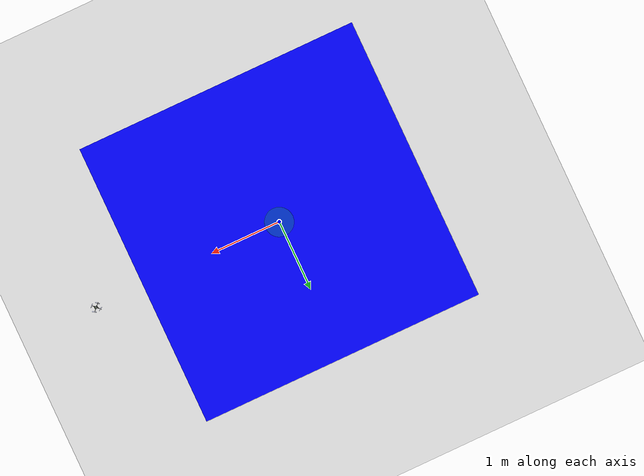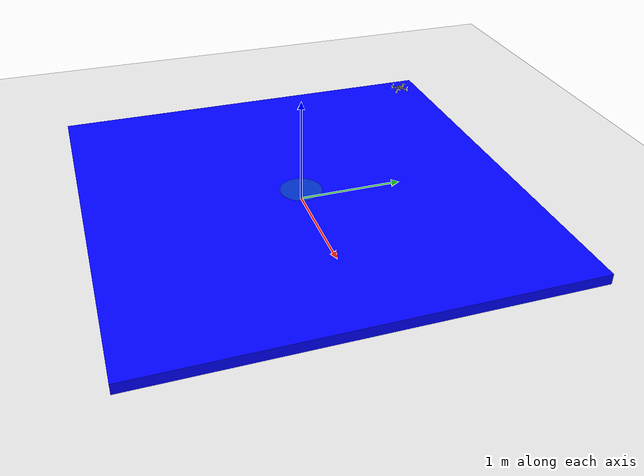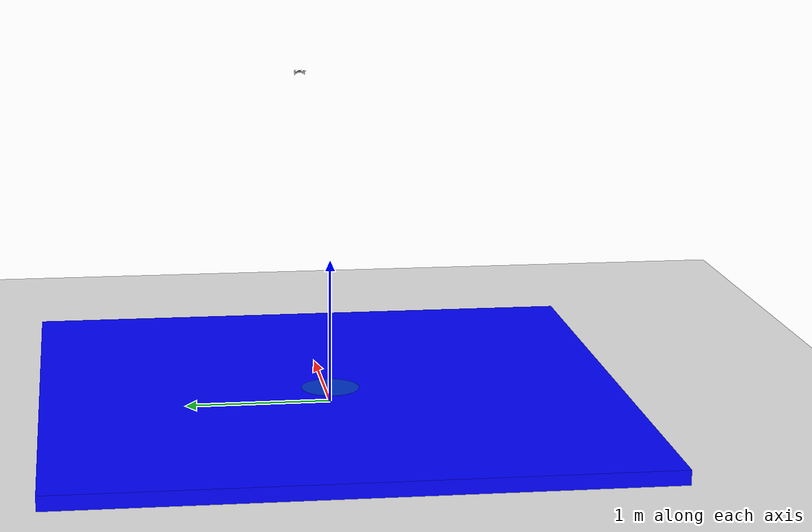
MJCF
<mujoco model="drone_landing">
    <option timestep="0.001"/>
    <option integrator="RK4" density="1.225" viscosity="1.8e-5"/>
    <compiler inertiafromgeom="false"
              meshdir="/Users/hadarhalfon/PycharmProjects/pythonProject1/assets/cf2"
              autolimits="true"/>
    <visual>
        <!-- טווח הערפל (מוגדר ב-map) -->
        <map fogstart="1" fogend="5"/>
        <!-- צבע/שקיפות הערפל (מוגדר ב-rgba.fog) -->
        <rgba fog="0.9 0.9 0.9 0.0"/>
    </visual>

    <!-- Softer, more damped contacts + higher sliding friction -->
    <default>
        <default class="cf2">
            <default class="visual">
                <geom group="2" type="mesh" contype="0" conaffinity="0"/>
            </default>
            <default class="collision">
                <geom group="3" type="mesh"
                      solref="0.02 1.0"
                      solimp="0.90 0.95 0.001"
                      friction="1.2 0.8 0.001"
                      condim="6"/>
            </default>
            <site group="5"/>
        </default>
    </default>

    <asset>
        <material name="polished_plastic" rgba="0.631 0.659 0.678 1"/>
        <material name="polished_gold" rgba="0.969 0.878 0.6 1"/>
        <material name="medium_gloss_plastic" rgba="0.109 0.184 0.0 1"/>
        <material name="propeller_plastic" rgba="0.792 0.820 0.933 1"/>
        <material name="white" rgba="1 1 1 1"/>
        <material name="body_frame_plastic" rgba="0.102 0.102 0.102 1"/>
        <material name="burnished_chrome" rgba="0.898 0.898 0.898 1"/>

        <!-- meshes -->
        <mesh file="cf2_0.obj"/>
        <mesh file="cf2_1.obj"/>
        <mesh file="cf2_2.obj"/>
        <mesh file="cf2_3.obj"/>
        <mesh file="cf2_4.obj"/>
        <mesh file="cf2_5.obj"/>
        <mesh file="cf2_6.obj"/>
        <mesh file="cf2_collision_0.obj"/>
        <mesh file="cf2_collision_1.obj"/>
        <mesh file="cf2_collision_2.obj"/>
        <mesh file="cf2_collision_3.obj"/>
        <mesh file="cf2_collision_4.obj"/>
        <mesh file="cf2_collision_5.obj"/>
        <mesh file="cf2_collision_6.obj"/>
        <mesh file="cf2_collision_7.obj"/>
        <mesh file="cf2_collision_8.obj"/>
        <mesh file="cf2_collision_9.obj"/>
        <mesh file="cf2_collision_10.obj"/>
        <mesh file="cf2_collision_11.obj"/>
        <mesh file="cf2_collision_12.obj"/>
        <mesh file="cf2_collision_13.obj"/>
        <mesh file="cf2_collision_14.obj"/>
        <mesh file="cf2_collision_15.obj"/>
        <mesh file="cf2_collision_16.obj"/>
        <mesh file="cf2_collision_17.obj"/>
        <mesh file="cf2_collision_18.obj"/>
        <mesh file="cf2_collision_19.obj"/>
        <mesh file="cf2_collision_20.obj"/>
        <mesh file="cf2_collision_21.obj"/>
        <mesh file="cf2_collision_22.obj"/>
        <mesh file="cf2_collision_23.obj"/>
        <mesh file="cf2_collision_24.obj"/>
        <mesh file="cf2_collision_25.obj"/>
        <mesh file="cf2_collision_26.obj"/>
        <mesh file="cf2_collision_27.obj"/>
        <mesh file="cf2_collision_28.obj"/>
        <mesh file="cf2_collision_29.obj"/>
        <mesh file="cf2_collision_30.obj"/>
        <mesh file="cf2_collision_31.obj"/>
    </asset>

    <worldbody>
        <!-- Drone -->
        <body name="cf2" pos="2 0 2" childclass="cf2">
            <joint type="free" damping="0.05"/>
            <inertial pos="0 0 0" mass="0.027" diaginertia="2.3951e-5 2.3951e-5 3.2347e-5"/>
            <camera name="track" pos="-1 0 .5" xyaxes="0 -1 0 1 0 2" mode="trackcom"/>

            <!-- visual geoms -->
            <geom mesh="cf2_0" material="propeller_plastic" class="visual"/>
            <geom mesh="cf2_1" material="medium_gloss_plastic" class="visual"/>
            <geom mesh="cf2_2" material="polished_gold" class="visual"/>
            <geom mesh="cf2_3" material="polished_plastic" class="visual"/>
            <geom mesh="cf2_4" material="burnished_chrome" class="visual"/>
            <geom mesh="cf2_5" material="body_frame_plastic" class="visual"/>
            <geom mesh="cf2_6" material="white" class="visual"/>

            <!-- collision geoms -->
            <geom mesh="cf2_collision_0" class="collision"/>
            <geom mesh="cf2_collision_1" class="collision"/>
            <geom mesh="cf2_collision_2" class="collision"/>
            <geom mesh="cf2_collision_3" class="collision"/>
            <geom mesh="cf2_collision_4" class="collision"/>
            <geom mesh="cf2_collision_5" class="collision"/>
            <geom mesh="cf2_collision_6" class="collision"/>
            <geom mesh="cf2_collision_7" class="collision"/>
            <geom mesh="cf2_collision_8" class="collision"/>
            <geom mesh="cf2_collision_9" class="collision"/>
            <geom mesh="cf2_collision_10" class="collision"/>
            <geom mesh="cf2_collision_11" class="collision"/>
            <geom mesh="cf2_collision_12" class="collision"/>
            <geom mesh="cf2_collision_13" class="collision"/>
            <geom mesh="cf2_collision_14" class="collision"/>
            <geom mesh="cf2_collision_15" class="collision"/>
            <geom mesh="cf2_collision_16" class="collision"/>
            <geom mesh="cf2_collision_17" class="collision"/>
            <geom mesh="cf2_collision_18" class="collision"/>
            <geom mesh="cf2_collision_19" class="collision"/>
            <geom mesh="cf2_collision_20" class="collision"/>
            <geom mesh="cf2_collision_21" class="collision"/>
            <geom mesh="cf2_collision_22" class="collision"/>
            <geom mesh="cf2_collision_23" class="collision"/>
            <geom mesh="cf2_collision_24" class="collision"/>
            <geom mesh="cf2_collision_25" class="collision"/>
            <geom mesh="cf2_collision_26" class="collision"/>
            <geom mesh="cf2_collision_27" class="collision"/>
            <geom mesh="cf2_collision_28" class="collision"/>
            <geom mesh="cf2_collision_29" class="collision"/>
            <geom mesh="cf2_collision_30" class="collision"/>
            <geom mesh="cf2_collision_31" class="collision"/>

            <site name="imu"/>
            <site name="actuation"/>
        </body>

        <!-- Floor -->
        <geom name="floor" type="plane" pos="0 0 0" size="50 50 0.1" rgba="0.9 0.9 0.9 1"/>

        <!-- Platform -->
        <body name="platform_root" pos="0 0 0">
            <joint name="platform_x" type="slide" axis="1 0 0" range="-10 10" damping="5"/>
            <joint name="platform_y" type="slide" axis="0 1 0" range="-10 10" damping="5"/>
            <body name="platform" pos="0 0 0.05">
                <inertial pos="0 0 0" mass="0.5" diaginertia="0.01 0.01 0.01"/>
                <geom type="box" size="2 2 0.05" rgba="0 0 1 1"
                      solref="0.02 1.0" solimp="0.90 0.95 0.001"
                      friction="1.2 0.8 0.001" condim="6"/>
                <geom name="success_zone_disk" type="cylinder"
                      size="0.20 0.0005" pos="0 0 0.0507"
                      rgba="0 1 0 0.45" contype="0" conaffinity="0" condim="6" group="2"/>
                <site name="platform_top_touch" type="box" pos="0 0 0.05" size="2 2 0.001" rgba="0 0 0 0"/>
                <site name="success_zone_touch" type="cylinder" pos="0 0 0.0507" size="0.20 0.001" rgba="0 1 0 0.1"/>
            </body>
        </body>
    </worldbody>

        <actuator>
        <!-- Drone actuators: N and N·m directly (matches set_actuator_control) -->
        <general class="cf2" name="u_thrust" site="actuation"
                 ctrllimited="true" ctrlrange="0 0.53"   gear="0 0 1 0 0 0"/>
        <general class="cf2" name="u_mx"     site="actuation"
                 ctrllimited="true" ctrlrange="-0.01 0.01" gear="0 0 0 1 0 0"/>
        <general class="cf2" name="u_my"     site="actuation"
                 ctrllimited="true" ctrlrange="-0.01 0.01" gear="0 0 0 0 1 0"/>
        <general class="cf2" name="u_mz"     site="actuation"
                 ctrllimited="true" ctrlrange="-0.003 0.003" gear="0 0 0 0 0 1"/>

        <!-- Platform position servos (existing) -->
        <position name="px_cmd" joint="platform_x" kp="100" ctrlrange="-5 5"/>
        <position name="py_cmd" joint="platform_y" kp="100" ctrlrange="-5 5"/>

        <!-- Platform velocity servos (direct speed control, if תרצי להשתמש) -->
        <velocity name="px_vel_cmd" joint="platform_x" kv="100" ctrlrange="-3 3"/>
        <velocity name="py_vel_cmd" joint="platform_y" kv="100" ctrlrange="-3 3"/>
    </actuator>

    <sensor>
        <!-- Drone sensors -->
        <gyro name="body_gyro" site="imu"/>
        <accelerometer name="body_linacc" site="imu"/>
        <framequat name="body_quat" objtype="site" objname="imu"/>

        <!-- Platform joint state (added for convenience) -->
        <jointpos name="px_meas" joint="platform_x"/>
        <jointpos name="py_meas" joint="platform_y"/>
        <jointvel name="vx_meas" joint="platform_x"/>
        <jointvel name="vy_meas" joint="platform_y"/>
        <touch name="touch_top" site="platform_top_touch"/>
        <touch name="touch_success" site="success_zone_touch"/>
    </sensor>

    <!-- הנעילה שנדליק בזמן ריצה (אל תפעילי עד שמתקיים קריטריון הנחיתה) -->
    <equality>
        <weld name="drone_platform_weld" body1="platform" body2="cf2"
              solref="0.02 1.0" solimp="0.90 0.95 0.001" active="false"/>
    </equality>
</mujoco>
